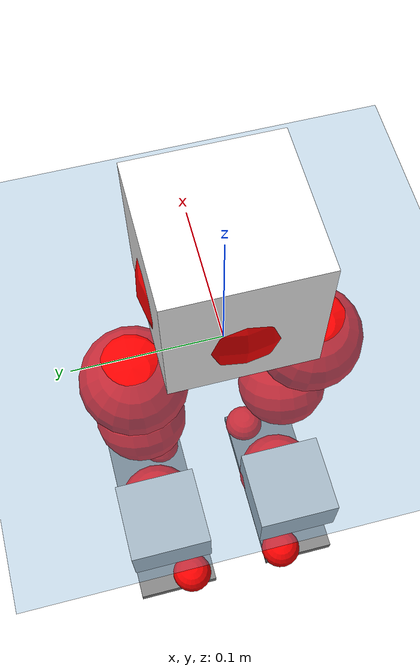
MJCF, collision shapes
<mujoco model="pi_12dof_release_v1">
  <compiler angle="radian" assetdir="assets" balanceinertia="true" inertiafromgeom="false"/>

  <option timestep="0.005" density="1.2" viscosity="2e-05"/>

  <size nkey="1"/>

  <visual>
    <quality shadowsize="8192"/>
    <map shadowclip="0.5"/>
  </visual>

  <default>
    <default class="/">
      <joint armature="0.01" damping="0.01" frictionloss="0.01"/>
      <geom contype="0" conaffinity="0" group="1" solref="-1000 -80"/>
      <site size="0.01 0.005 0.005" group="5"/>
      <general forcelimited="true" biastype="affine" gainprm="20" biasprm="0 -20 -0.5"/>
      <default class="foot">
        <geom size="0.0845 0.036 0.005" type="box" condim="6" group="4" priority="1" friction="0.9 0.2 0.2" solimp="0.015 1 0.005"/>
      </default>
      <default class="reward_collision_sphere">
        <geom group="5" rgba="1 0 0 1"/>
      </default>
    </default>
  </default>

  <asset>
    <texture type="skybox" colorspace="auto" name="//unnamed_texture_0" builtin="gradient" rgb1="0.95 0.95 0.95" rgb2="0.95 0.95 0.95" width="100" height="600"/>
    <texture type="2d" colorspace="auto" name="texplane" builtin="checker" rgb1="0.345 0.575 0.748" rgb2="0.345 0.575 0.748" markrgb="1 1 1" width="512" height="512"/>
    <material name="MatPlane" class="/" texture="texplane" texuniform="true" texrepeat="2 2" specular="0.9"/>
    <mesh name="baselink_1" class="/" file="baselink_1.STL"/>
    <mesh name="r_hip_pitch_link" class="/" file="r_hip_pitch_link.STL"/>
    <mesh name="r_hip_roll_link" class="/" file="r_hip_roll_link.STL"/>
    <mesh name="r_thigh_link" class="/" file="r_thigh_link.STL"/>
    <mesh name="r_calf_link" class="/" file="r_calf_link.STL"/>
    <mesh name="r_ankle_pitch_link" class="/" file="r_ankle_pitch_link.STL"/>
    <mesh name="r_ankle_roll_link" class="/" file="r_ankle_roll_link.STL"/>
    <mesh name="l_hip_pitch_link" class="/" file="l_hip_pitch_link.STL"/>
    <mesh name="l_hip_roll_link" class="/" file="l_hip_roll_link.STL"/>
    <mesh name="l_thigh_link" class="/" file="l_thigh_link.STL"/>
    <mesh name="l_calf_link" class="/" file="l_calf_link.STL"/>
    <mesh name="l_ankle_pitch_link" class="/" file="l_ankle_pitch_link.STL"/>
    <mesh name="l_ankle_roll_link" class="/" file="l_ankle_roll_link.STL"/>
  </asset>

  <worldbody>
    <geom name="floor" class="/" size="100 100 0.125" type="plane" group="0" material="MatPlane"/>
    <light name="toplight_shadow" class="/" pos="0 0 5" dir="0.0990148 0.0990148 -0.990148" type="directional" ambient="0.04 0.04 0.04" diffuse="0.55 0.55 0.55" specular="0.12 0.12 0.12"/>
    <light name="toplight_fill" class="/" pos="0 0 5" dir="0.0990148 0.0990148 -0.990148" type="directional" castshadow="false" ambient="0.04 0.04 0.04" diffuse="0.3 0.3 0.3" specular="0.08 0.08 0.08"/>
    <body name="trunk" pos="-0.000286543 1.2706e-05 0.00027698" quat="1 -3.26034e-05 0.000219459 9.43474e-05">
      <inertial pos="0.00245317 -0.000906456 0.0401184" quat="0.695424 0.0102829 0.0125957 0.718415" mass="1.70939" diaginertia="0.0104237 0.00249901 0.0040482"/>
      <joint name="//unnamed_joint_0" type="free"/>
      <geom name="//unnamed_geom_1" class="/" type="mesh" density="0" rgba="1 1 1 1" mesh="baselink_1"/>
      <geom name="//unnamed_geom_2" class="/" size="0.0464139 0.0464139 0.0464139" pos="0 0 0.079512" type="box" rgba="1 1 1 1"/>
      <geom name="//unnamed_geom_3" class="reward_collision_sphere" size="0.0510553" pos="0 0 0.069573"/>
      <site name="imu" class="/" pos="0.00236708 0.000275288 -0.00120475" size="0.00928279"/>
      <camera name="track" class="/" pos="0 -1.55175 0" quat="0.707107 0.707107 0 0" mode="trackcom"/>
      <camera name="ego_camera" class="/" pos="0.0761296 0 0.178902" quat="-0.5 -0.5 0.5 0.5"/>
      <body name="r_hip_pitch_link" pos="-6.3534e-05 -0.0175809 -0.0318406" quat="0.992203 -3.33629e-05 -0.124634 6.75409e-05">
        <inertial pos="0.00110459 -0.0427532 5.6992e-05" quat="-0.0195988 0.70584 -0.0278992 0.70755" mass="0.294109" diaginertia="0.000116284 2.78405e-05 8.06549e-05"/>
        <joint name="r_hip_pitch_joint" class="/" pos="0 0 0" axis="0.000389193 -0.999994 -0.00353126" range="-1.74675 1.23225" armature="0.00930182" damping="0.013397" frictionloss="0.00931576"/>
        <geom name="//unnamed_geom_4" class="/" type="mesh" density="0" rgba="0.75294 0.75294 0.75294 1" mesh="r_hip_pitch_link"/>
        <geom name="//unnamed_geom_5" class="/" size="0.000464139 0.000464139 0.000464139" type="box" rgba="0.75294 0.75294 0.75294 1"/>
        <body name="r_hip_roll_link" pos="0.0014156 -0.0432069 0.000236337" quat="1 -0.000252736 -1.96338e-05 0.000147145">
          <inertial pos="-0.00133016 -4.32414e-05 -0.0618357" quat="0.704916 -0.0795604 -0.0814159 0.700096" mass="0.309416" diaginertia="0.000359783 7.79134e-05 0.000123901"/>
          <joint name="r_hip_roll_joint" class="/" pos="0 0 0" axis="-0.999996 0.000359841 -0.00283326" stiffness="0.000235903" range="-0.119559 0.488146" armature="0.00931254" damping="0.0114721" frictionloss="0.00967932"/>
          <geom name="//unnamed_geom_6" class="/" type="mesh" density="0" rgba="0.75294 0.75294 0.75294 1" mesh="r_hip_roll_link"/>
          <geom name="//unnamed_geom_7" class="/" size="0.000464139 0.000464139 0.000464139" type="box" rgba="0.75294 0.75294 0.75294 1"/>
          <geom name="//unnamed_geom_8" class="reward_collision_sphere" size="0.0371311"/>
          <body name="r_thigh_link" pos="-0.00029924 0.000382655 -0.0687336" quat="1 -2.32495e-05 6.03558e-05 -0.000361985">
            <inertial pos="-0.000128892 0.000302229 -0.0473519" quat="0.737242 0.675629 3.66144e-06 4.47255e-05" mass="0.0883132" diaginertia="0.000134611 2.62939e-05 5.59783e-05"/>
            <joint name="r_thigh_joint" class="/" pos="0 0 0" axis="0.00255929 0.00201722 -0.999995" range="-0.318771 0.596857" armature="0.00923034" damping="0.00308772" frictionloss="0.00944977"/>
            <geom name="//unnamed_geom_9" class="/" type="mesh" density="0" rgba="0.75294 0.75294 0.75294 1" mesh="r_thigh_link"/>
            <geom name="//unnamed_geom_10" class="/" size="0.000464139 0.000464139 0.000464139" type="box" rgba="0.75294 0.75294 0.75294 1"/>
            <body name="r_calf_link" pos="-0.000591624 -0.000678289 -0.0695699" quat="0.947666 -1.88626e-05 0.319262 -0.000192205">
              <inertial pos="-0.00023544 -0.000472206 -0.0695473" quat="0.999976 -0.00644009 -0.000906596 0.00240582" mass="0.651986" diaginertia="0.00381011 0.000996484 0.000169549"/>
              <joint name="r_calf_joint" class="/" pos="0 0 0" axis="0.00365238 -0.999987 0.00368566" range="-1.64479 0.648482" armature="0.009036" damping="0.00610557" frictionloss="0.00921546"/>
              <geom name="//unnamed_geom_11" class="/" type="mesh" density="0" rgba="0.75294 0.75294 0.75294 1" mesh="r_calf_link"/>
              <geom name="//unnamed_geom_12" class="/" size="0.000464139 0.000464139 0.000464139" type="box" rgba="0.75294 0.75294 0.75294 1"/>
              <geom name="//unnamed_geom_13" class="reward_collision_sphere" size="0.0371311"/>
              <body name="r_ankle_pitch_link" pos="0.000447891 0.000599522 -0.139766" quat="0.980055 3.84839e-05 -0.198728 3.77312e-05">
                <inertial pos="0.0055261 0.00361212 0.000281779" quat="0.00199647 0.707021 -0.00243567 0.707185" mass="0.141299" diaginertia="0.000330781 6.26913e-05 0.000116699"/>
                <joint name="r_ankle_pitch_joint" class="/" pos="0 0 0" axis="0.000793059 -0.999993 -0.0035255" range="-1.30011 0.501495" armature="0.00949647" damping="0.00739973" frictionloss="0.00968502"/>
                <geom name="//unnamed_geom_14" class="/" type="mesh" density="0" rgba="0.75294 0.75294 0.75294 1" mesh="r_ankle_pitch_link"/>
                <geom name="//unnamed_geom_15" class="/" size="0.0362029 0.0371311 0.023207" type="box" rgba="0.75294 0.75294 0.75294 1"/>
                <body name="r_ankle_roll_link" pos="0.0778835 0.00170454 -0.00037792" quat="1 -0.000136527 -0.000184226 7.82855e-05">
                  <inertial pos="-0.0235706 0.000877737 -0.0150653" quat="0.559197 0.431178 0.433608 0.559793" mass="0.417456" diaginertia="0.00121003 0.000288063 0.000275838"/>
                  <joint name="r_ankle_roll_joint" class="/" pos="0 0 0" axis="-0.999999 -0.000960555 -0.000399353" range="-0.152811 0.150214" armature="0.0095063" damping="0.00683468" frictionloss="0.00923956"/>
                  <geom name="//unnamed_geom_16" class="/" type="mesh" density="0" rgba="0.75294 0.75294 0.75294 1" mesh="r_ankle_roll_link"/>
                  <geom name="//unnamed_geom_17" class="/" type="mesh" rgba="0.75294 0.75294 0.75294 1" mesh="r_ankle_roll_link"/>
                  <geom name="right_foot" class="foot" size="0.0791461 0.0326277 0.0045002" pos="-0.0517682 0 -0.0437316"/>
                  <geom name="//unnamed_geom_19" class="reward_collision_sphere" size="0.0371311" pos="-0.0507531 0 -0.019878"/>
                  <geom name="//unnamed_geom_20" class="reward_collision_sphere" size="0.0185656" pos="0.0152259 0.0155175 -0.039756"/>
                  <geom name="//unnamed_geom_21" class="reward_collision_sphere" size="0.0185656" pos="-0.121807 0.0155175 -0.039756"/>
                  <site name="right_foot" class="foot" pos="-0.0517682 0 -0.0437316" size="0.00928279"/>
                </body>
              </body>
            </body>
          </body>
        </body>
      </body>
      <body name="l_hip_pitch_link" pos="0.00078783 0.0189481 -0.0324647" quat="0.992196 -8.0075e-05 -0.124687 6.01644e-05">
        <inertial pos="0.000962351 0.0409452 -9.15258e-05" quat="-0.0384676 0.704677 0.0279783 0.707932" mass="0.314067" diaginertia="0.000137726 2.96336e-05 9.84569e-05"/>
        <joint name="l_hip_pitch_joint" class="/" pos="0 0 0" axis="-0.00240533 0.999991 0.00340052" range="-1.24588 1.7539" armature="0.00921504" damping="0.0140873" frictionloss="0.00906403"/>
        <geom name="//unnamed_geom_22" class="/" type="mesh" density="0" rgba="0.75294 0.75294 0.75294 1" mesh="l_hip_pitch_link"/>
        <geom name="//unnamed_geom_23" class="/" size="0.000464139 0.000464139 0.000464139" type="box" rgba="0.75294 0.75294 0.75294 1"/>
        <body name="l_hip_roll_link" pos="-0.00100678 0.0430884 6.45249e-05" quat="1 -6.02005e-05 -0.000105284 -3.27334e-05">
          <inertial pos="-0.00124806 0.000242091 -0.0606791" quat="0.701349 -0.0755663 -0.0753703 0.704783" mass="0.309047" diaginertia="0.000359147 7.70096e-05 0.000122438"/>
          <joint name="l_hip_roll_joint" class="/" pos="0 0 0" axis="-0.999994 -0.00184535 0.00279412" range="-0.499306 0.113206" armature="0.00896391" damping="0.00898392" frictionloss="0.00963486"/>
          <geom name="//unnamed_geom_24" class="/" type="mesh" density="0" rgba="0.75294 0.75294 0.75294 1" mesh="l_hip_roll_link"/>
          <geom name="//unnamed_geom_25" class="/" size="0.000464139 0.000464139 0.000464139" type="box" rgba="0.75294 0.75294 0.75294 1"/>
          <geom name="//unnamed_geom_26" class="reward_collision_sphere" size="0.0371311"/>
          <body name="l_thigh_link" pos="0.000297329 -0.000729156 -0.069449" quat="1 -5.16344e-05 0.000151295 -9.20907e-05">
            <inertial pos="0.000539831 -0.00157137 -0.04665" quat="0.675954 0.736937 0.00222308 0.00241563" mass="0.0901864" diaginertia="0.000134147 2.66795e-05 5.62146e-05"/>
            <joint name="l_thigh_joint" class="/" pos="0 0 0" axis="0.00137305 0.00138724 -0.999998" stiffness="4.36076e-05" range="-0.603429 0.30043" armature="0.00919515" damping="0.00417219" frictionloss="0.00914672"/>
            <geom name="//unnamed_geom_27" class="/" type="mesh" density="0" rgba="0.75294 0.75294 0.75294 1" mesh="l_thigh_link"/>
            <geom name="//unnamed_geom_28" class="/" size="0.000464139 0.000464139 0.000464139" type="box" rgba="0.75294 0.75294 0.75294 1"/>
            <body name="l_calf_link" pos="-0.000446537 -0.000470674 -0.069955" quat="0.947659 -5.38799e-05 0.319284 -9.23746e-05">
              <inertial pos="-0.000615391 0.00182514 -0.0697198" quat="0.999985 0.0027341 -0.000898352 0.00455657" mass="0.649197" diaginertia="0.00374564 0.000969874 0.000166926"/>
              <joint name="l_calf_joint" class="/" pos="0 0 0" axis="0.000746563 1 0.000253296" range="-0.667527 1.65299" armature="0.00928241" damping="0.005685" frictionloss="0.00954627"/>
              <geom name="//unnamed_geom_29" class="/" type="mesh" density="0" rgba="0.75294 0.75294 0.75294 1" mesh="l_calf_link"/>
              <geom name="//unnamed_geom_30" class="/" size="0.000464139 0.000464139 0.000464139" type="box" rgba="0.75294 0.75294 0.75294 1"/>
              <geom name="//unnamed_geom_31" class="reward_collision_sphere" size="0.0371311"/>
              <body name="l_ankle_pitch_link" pos="0.000757715 0.000917865 -0.139089" quat="0.980068 4.17499e-06 -0.198662 8.87332e-05">
                <inertial pos="0.0053805 -0.000470557 0.000430386" quat="9.77013e-05 0.70776 0.00389265 0.706443" mass="0.140015" diaginertia="0.000331893 6.19607e-05 0.000117263"/>
                <joint name="l_ankle_pitch_joint" class="/" pos="0 0 0" axis="-6.85396e-05 1 5.37559e-05" stiffness="0.00116859" range="-0.521178 1.28477" armature="0.00905133" damping="0.0054282" frictionloss="0.00943231"/>
                <geom name="//unnamed_geom_32" class="/" type="mesh" density="0" rgba="0.75294 0.75294 0.75294 1" mesh="l_ankle_pitch_link"/>
                <geom name="//unnamed_geom_33" class="/" size="0.0362029 0.0371311 0.023207" type="box" rgba="0.75294 0.75294 0.75294 1"/>
                <body name="l_ankle_roll_link" pos="0.0763808 0.000230303 0.000244159" quat="1 0.000149894 1.06387e-05 -8.93408e-06">
                  <inertial pos="-0.0247827 -0.00113603 -0.0143297" quat="0.560254 0.431152 0.433327 0.558973" mass="0.413582" diaginertia="0.00123742 0.000289372 0.000276061"/>
                  <joint name="l_ankle_roll_joint" class="/" pos="0 0 0" axis="-0.999997 0.000399267 -0.00236851" range="-0.143452 0.169154" armature="0.00927896" damping="0.0078061" frictionloss="0.00911569"/>
                  <geom name="//unnamed_geom_34" class="/" type="mesh" density="0" rgba="0.75294 0.75294 0.75294 1" mesh="l_ankle_roll_link"/>
                  <geom name="//unnamed_geom_35" class="/" type="mesh" rgba="0.75294 0.75294 0.75294 1" mesh="l_ankle_roll_link"/>
                  <geom name="left_foot" class="foot" size="0.0814789 0.0364921 0.00459644" pos="-0.0517682 0 -0.0437316"/>
                  <geom name="//unnamed_geom_37" class="reward_collision_sphere" size="0.0371311" pos="-0.0507531 0 -0.019878"/>
                  <geom name="//unnamed_geom_38" class="reward_collision_sphere" size="0.0185656" pos="0.0152259 -0.0155175 -0.039756"/>
                  <geom name="//unnamed_geom_39" class="reward_collision_sphere" size="0.0185656" pos="-0.121807 -0.0155175 -0.039756"/>
                  <site name="left_foot" class="foot" pos="-0.0517682 0 -0.0437316" size="0.00928279"/>
                </body>
              </body>
            </body>
          </body>
        </body>
      </body>
    </body>
  </worldbody>

  <contact>
    <pair class="/" geom1="floor" geom2="right_foot" name="//unnamed_contact_1"/>
    <pair class="/" geom1="floor" geom2="left_foot" name="//unnamed_contact_0"/>
  </contact>

  <actuator>
    <general name="r_hip_pitch_joint" class="/" joint="r_hip_pitch_joint" forcerange="-19.303 19.303" gainprm="18.5022" biasprm="0 -18.5022 -0.467627"/>
    <general name="r_hip_roll_joint" class="/" joint="r_hip_roll_joint" forcerange="-19.4114 19.4114" gainprm="18.5022" biasprm="0 -18.5022 -0.467627"/>
    <general name="r_thigh_joint" class="/" joint="r_thigh_joint" forcerange="-19.4777 19.4777" gainprm="18.5022" biasprm="0 -18.5022 -0.467627"/>
    <general name="r_calf_joint" class="/" joint="r_calf_joint" forcerange="-19.6982 19.6982" gainprm="18.5022" biasprm="0 -18.5022 -0.467627"/>
    <general name="r_ankle_pitch_joint" class="/" joint="r_ankle_pitch_joint" forcerange="-19.1274 19.1274" gainprm="18.5022" biasprm="0 -18.5022 -0.467627"/>
    <general name="r_ankle_roll_joint" class="/" joint="r_ankle_roll_joint" forcerange="-19.7967 19.7967" gainprm="18.5022" biasprm="0 -18.5022 -0.467627"/>
    <general name="l_hip_pitch_joint" class="/" joint="l_hip_pitch_joint" forcerange="-19.5481 19.5481" gainprm="18.5022" biasprm="0 -18.5022 -0.467627"/>
    <general name="l_hip_roll_joint" class="/" joint="l_hip_roll_joint" forcerange="-19.9212 19.9212" gainprm="18.5022" biasprm="0 -18.5022 -0.467627"/>
    <general name="l_thigh_joint" class="/" joint="l_thigh_joint" forcerange="-19.3499 19.3499" gainprm="18.5022" biasprm="0 -18.5022 -0.467627"/>
    <general name="l_calf_joint" class="/" joint="l_calf_joint" forcerange="-19.4488 19.4488" gainprm="18.5022" biasprm="0 -18.5022 -0.467627"/>
    <general name="l_ankle_pitch_joint" class="/" joint="l_ankle_pitch_joint" forcerange="-19.3427 19.3427" gainprm="18.5022" biasprm="0 -18.5022 -0.467627"/>
    <general name="l_ankle_roll_joint" class="/" joint="l_ankle_roll_joint" forcerange="-18.9026 18.9026" gainprm="18.5022" biasprm="0 -18.5022 -0.467627"/>
  </actuator>

  <sensor>
    <gyro site="imu" name="imu_angular_velocity"/>
    <velocimeter site="imu" name="imu_linear_velocity"/>
    <framelinvel objtype="site" objname="left_foot" name="left_foot_global_linear_velocity"/>
    <framelinvel objtype="site" objname="right_foot" name="right_foot_global_linear_velocity"/>
  </sensor>

  <keyframe>
    <key name="home" qpos="0 0 0.291 1 0 0 0 0.4 0 0 -0.8 0.4 0 -0.4 0 0 0.8 -0.4 0"/>
  </keyframe>
</mujoco>
